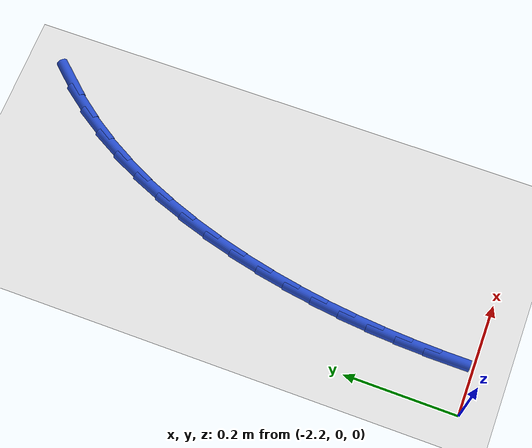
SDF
<sdf version="1.6">
 <world name="default">
  <model name="ground_plane">
   <static>1</static>
   <link name="link">
    <collision name="collision">
     <geometry><plane><normal>0 0 1</normal><size>100 100</size></plane></geometry>
     <surface><friction><ode><mu>100</mu><mu2>50</mu2></ode></friction></surface>
    </collision>
    <visual name="visual">
     <cast_shadows>0</cast_shadows>
     <geometry><plane><normal>0 0 1</normal><size>100 100</size></plane></geometry>
     <material>
      <script><uri>file://media/materials/scripts/gazebo.material</uri><name>Gazebo/WhiteGlow</name></script>
     </material>
    </visual>
   </link>
  </model>
  <model name="line">
   <link name="link_47">
    <pose>-1.8584788893345487 0.8358462846795855 0.01 0 1.57 0.8329421071679107</pose>
    <collision name="collision">
     <geometry><cylinder><radius>0.01</radius><length>0.08</length></cylinder></geometry>
    </collision>
    <visual name="visual">
     <material>
      <script><name>Gazebo/Blue</name><uri>file://media/materials/scripts/gazebo.material</uri></script>
     </material>
     <geometry><cylinder><radius>0.01</radius><length>0.08</length></cylinder></geometry>
    </visual>
   </link>
   <link name="link_48">
    <pose>-1.8933588683144056 0.7974813262726317 0.01 0 1.57 0.9161353001164417</pose>
    <collision name="collision">
     <geometry><cylinder><radius>0.01</radius><length>0.08</length></cylinder></geometry>
    </collision>
    <visual name="visual">
     <material>
      <script><name>Gazebo/Blue</name><uri>file://media/materials/scripts/gazebo.material</uri></script>
     </material>
     <geometry><cylinder><radius>0.01</radius><length>0.08</length></cylinder></geometry>
    </visual>
   </link>
   <link name="link_49">
    <pose>-1.9252254811972977 0.7559659229458343 0.01 0 1.57 0.9915698859721094</pose>
    <collision name="collision">
     <geometry><cylinder><radius>0.01</radius><length>0.08</length></cylinder></geometry>
    </collision>
    <visual name="visual">
     <material>
      <script><name>Gazebo/Blue</name><uri>file://media/materials/scripts/gazebo.material</uri></script>
     </material>
     <geometry><cylinder><radius>0.01</radius><length>0.08</length></cylinder></geometry>
    </visual>
   </link>
   <link name="link_50">
    <pose>-1.9541868524251274 0.7116867733731556 0.01 0 1.57 1.0597080260556322</pose>
    <collision name="collision">
     <geometry><cylinder><radius>0.01</radius><length>0.08</length></cylinder></geometry>
    </collision>
    <visual name="visual">
     <material>
      <script><name>Gazebo/Blue</name><uri>file://media/materials/scripts/gazebo.material</uri></script>
     </material>
     <geometry><cylinder><radius>0.01</radius><length>0.08</length></cylinder></geometry>
    </visual>
   </link>
   <link name="link_51">
    <pose>-1.9803511064397972 0.6650305762285572 0.01 0 1.57 1.1211914038448678</pose>
    <collision name="collision">
     <geometry><cylinder><radius>0.01</radius><length>0.08</length></cylinder></geometry>
    </collision>
    <visual name="visual">
     <material>
      <script><name>Gazebo/Blue</name><uri>file://media/materials/scripts/gazebo.material</uri></script>
     </material>
     <geometry><cylinder><radius>0.01</radius><length>0.08</length></cylinder></geometry>
    </visual>
   </link>
   <link name="link_52">
    <pose>-2.0038263676832093 0.616384030186002 0.01 0 1.57 1.1767377655172175</pose>
    <collision name="collision">
     <geometry><cylinder><radius>0.01</radius><length>0.08</length></cylinder></geometry>
    </collision>
    <visual name="visual">
     <material>
      <script><name>Gazebo/Blue</name><uri>file://media/materials/scripts/gazebo.material</uri></script>
     </material>
     <geometry><cylinder><radius>0.01</radius><length>0.08</length></cylinder></geometry>
    </visual>
   </link>
   <link name="link_53">
    <pose>-2.024720760597267 0.5661338339194517 0.01 0 1.57 1.2270742403407648</pose>
    <collision name="collision">
     <geometry><cylinder><radius>0.01</radius><length>0.08</length></cylinder></geometry>
    </collision>
    <visual name="visual">
     <material>
      <script><name>Gazebo/Blue</name><uri>file://media/materials/scripts/gazebo.material</uri></script>
     </material>
     <geometry><cylinder><radius>0.01</radius><length>0.08</length></cylinder></geometry>
    </visual>
   </link>
   <link name="link_54">
    <pose>-2.0431424096238726 0.5146666861028679 0.01 0 1.57 1.2728997626051646</pose>
    <collision name="collision">
     <geometry><cylinder><radius>0.01</radius><length>0.08</length></cylinder></geometry>
    </collision>
    <visual name="visual">
     <material>
      <script><name>Gazebo/Blue</name><uri>file://media/materials/scripts/gazebo.material</uri></script>
     </material>
     <geometry><cylinder><radius>0.01</radius><length>0.08</length></cylinder></geometry>
    </visual>
   </link>
   <link name="link_55">
    <pose>-2.0591994392049298 0.46236928541021327 0.01 0 1.57 1.3148680401712731</pose>
    <collision name="collision">
     <geometry><cylinder><radius>0.01</radius><length>0.08</length></cylinder></geometry>
    </collision>
    <visual name="visual">
     <material>
      <script><name>Gazebo/Blue</name><uri>file://media/materials/scripts/gazebo.material</uri></script>
     </material>
     <geometry><cylinder><radius>0.01</radius><length>0.08</length></cylinder></geometry>
    </visual>
   </link>
   <link name="link_56">
    <pose>-2.0729999737823395 0.40962833051544995 0.01 0 1.57 1.3535840842161</pose>
    <collision name="collision">
     <geometry><cylinder><radius>0.01</radius><length>0.08</length></cylinder></geometry>
    </collision>
    <visual name="visual">
     <material>
      <script><name>Gazebo/Blue</name><uri>file://media/materials/scripts/gazebo.material</uri></script>
     </material>
     <geometry><cylinder><radius>0.01</radius><length>0.08</length></cylinder></geometry>
    </visual>
   </link>
   <link name="link_57">
    <pose>-2.0846521377980047 0.3568305200925399 0.01 0 1.57 1.3896100791507242</pose>
    <collision name="collision">
     <geometry><cylinder><radius>0.01</radius><length>0.08</length></cylinder></geometry>
    </collision>
    <visual name="visual">
     <material>
      <script><name>Gazebo/Blue</name><uri>file://media/materials/scripts/gazebo.material</uri></script>
     </material>
     <geometry><cylinder><radius>0.01</radius><length>0.08</length></cylinder></geometry>
    </visual>
   </link>
   <link name="link_58">
    <pose>-2.0942640707460405 0.30436229740748644 0.01 0 1.57 1.4237127322060479</pose>
    <collision name="collision">
     <geometry><cylinder><radius>0.01</radius><length>0.08</length></cylinder></geometry>
    </collision>
    <visual name="visual">
     <material>
      <script><name>Gazebo/Blue</name><uri>file://media/materials/scripts/gazebo.material</uri></script>
     </material>
     <geometry><cylinder><radius>0.01</radius><length>0.08</length></cylinder></geometry>
    </visual>
   </link>
   <link name="link_59">
    <pose>-2.101952217171061 0.2524691844976756 0.01 0 1.57 1.4565587902580925</pose>
    <collision name="collision">
     <geometry><cylinder><radius>0.01</radius><length>0.08</length></cylinder></geometry>
    </collision>
    <visual name="visual">
     <material>
      <script><name>Gazebo/Blue</name><uri>file://media/materials/scripts/gazebo.material</uri></script>
     </material>
     <geometry><cylinder><radius>0.01</radius><length>0.08</length></cylinder></geometry>
    </visual>
   </link>
   <link name="link_60">
    <pose>-2.107855090855152 0.2010222295718437 0.01 0 1.57 1.4877753461906076</pose>
    <collision name="collision">
     <geometry><cylinder><radius>0.01</radius><length>0.08</length></cylinder></geometry>
    </collision>
    <visual name="visual">
     <material>
      <script><name>Gazebo/Blue</name><uri>file://media/materials/scripts/gazebo.material</uri></script>
     </material>
     <geometry><cylinder><radius>0.01</radius><length>0.08</length></cylinder></geometry>
    </visual>
   </link>
   <link name="link_61">
    <pose>-2.1121148306794923 0.14983096966332174 0.01 0 1.57 1.51688891152035</pose>
    <collision name="collision">
     <geometry><cylinder><radius>0.01</radius><length>0.08</length></cylinder></geometry>
    </collision>
    <visual name="visual">
     <material>
      <script><name>Gazebo/Blue</name><uri>file://media/materials/scripts/gazebo.material</uri></script>
     </material>
     <geometry><cylinder><radius>0.01</radius><length>0.08</length></cylinder></geometry>
    </visual>
   </link>
   <link name="link_62">
    <pose>-2.114873575525264 0.09870494180544062 0.01 0 1.57 1.5434888849764405</pose>
    <collision name="collision">
     <geometry><cylinder><radius>0.01</radius><length>0.08</length></cylinder></geometry>
    </collision>
    <visual name="visual">
     <material>
      <script><name>Gazebo/Blue</name><uri>file://media/materials/scripts/gazebo.material</uri></script>
     </material>
     <geometry><cylinder><radius>0.01</radius><length>0.08</length></cylinder></geometry>
    </visual>
   </link>
   <link name="link_63">
    <pose>-2.116273464273645 0.04745368303153178 0.01 0 1.57 1.5672442308816923</pose>
    <collision name="collision">
     <geometry><cylinder><radius>0.01</radius><length>0.08</length></cylinder></geometry>
    </collision>
    <visual name="visual">
     <material>
      <script><name>Gazebo/Blue</name><uri>file://media/materials/scripts/gazebo.material</uri></script>
     </material>
     <geometry><cylinder><radius>0.01</radius><length>0.08</length></cylinder></geometry>
    </visual>
   </link>
  </model>
 </world>
</sdf>
